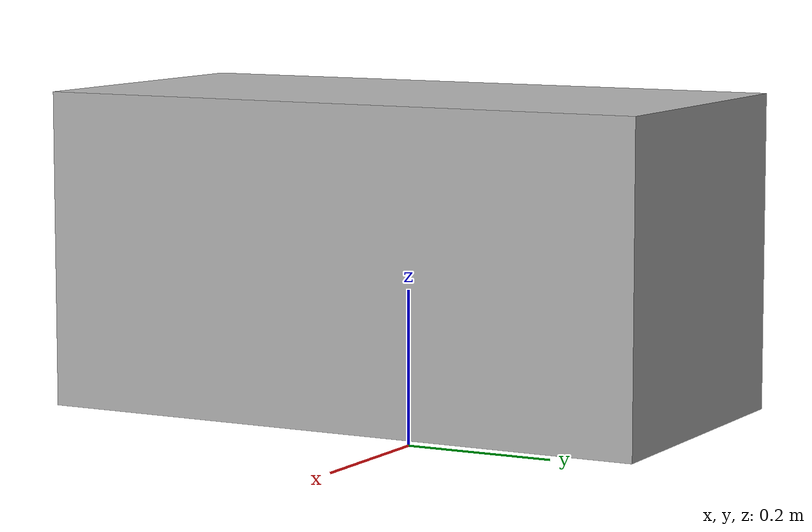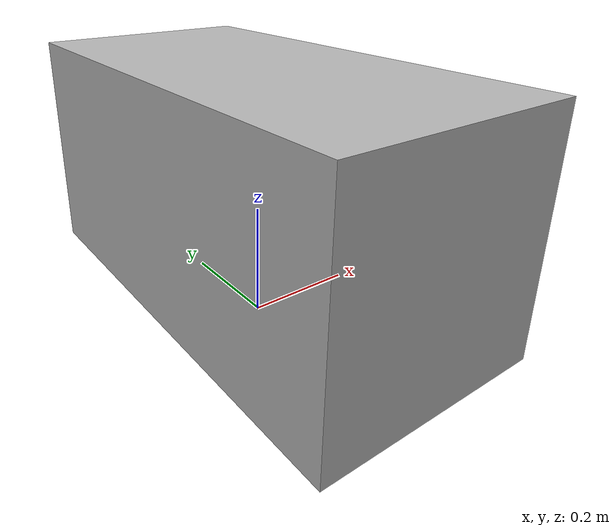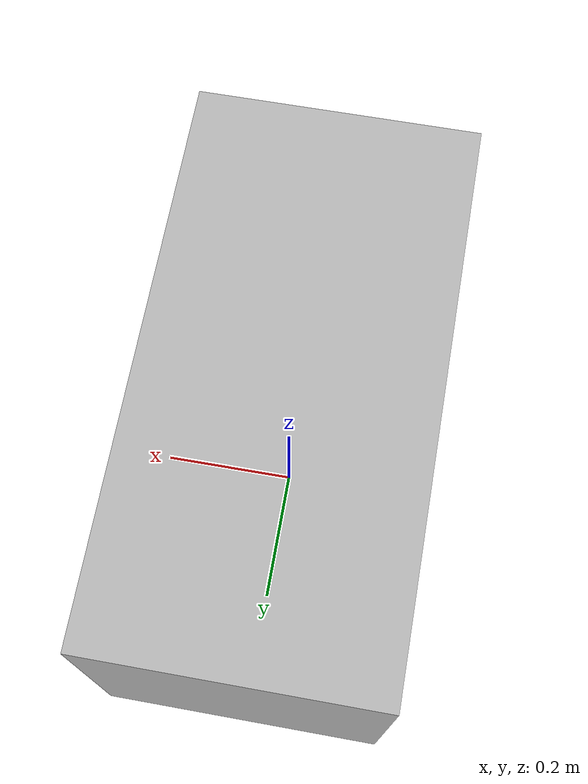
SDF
<?xml version="1.0" ?>
<sdf version="1.5">
  <model name="CuboQR8">
    <link name="link">
      <pose>0 0 0.25 0 0 0</pose>
      <inertial>
        <mass>0.390</mass>
        <inertia>
          <ixx>0.00058</ixx>
          <ixy>0</ixy>
          <ixz>0</ixz>
          <iyy>0.00058</iyy>
          <iyz>0</iyz>
          <izz>0.00019</izz>
        </inertia>
      </inertial>
      <collision name="collision">
        <geometry>
          <box>
            <size>0.4 0.8 0.4</size>
          </box>
        </geometry>
      </collision>
      <visual name="visual">
        <geometry>
          <box>
            <size>0.4 0.8 0.4</size>
          </box>
        </geometry>
        <material>
          <script>
            <uri>model://CuboQR8/materials/scripts</uri>
            <uri>model://CuboQR8/materials/textures</uri>
            <name>CuboQR8/Diffuse</name>
          </script>
        </material>
      </visual>
    </link>
  </model>
</sdf>
